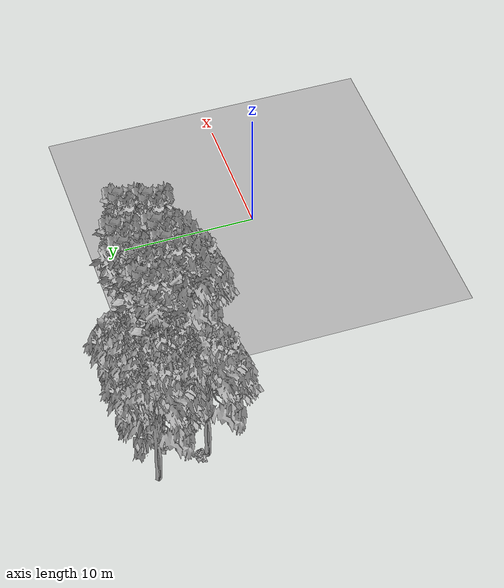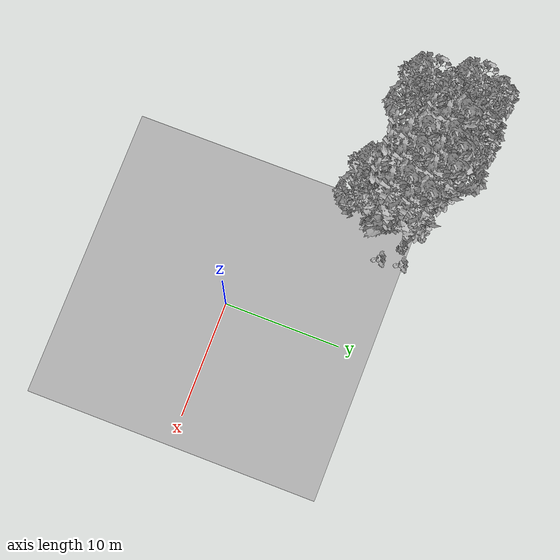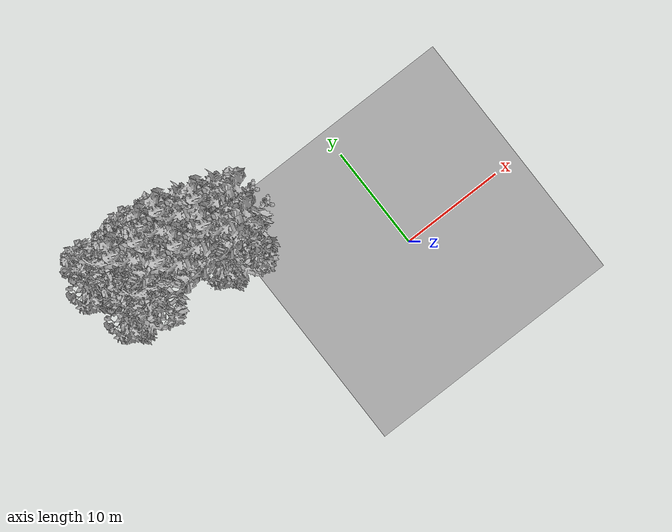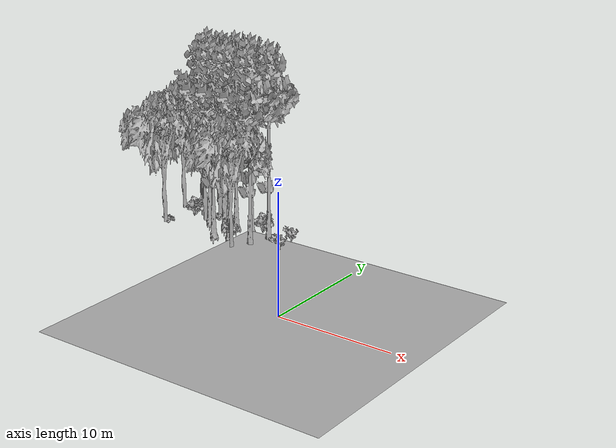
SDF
<sdf version="1.7">
 <world name="default">
  <model name="ground_plane">
   <static>1</static>
   <link name="link">
    <collision name="collision">
     <pose>-50 0 0 0 -0 0</pose>
     <geometry><plane><normal>0 0 1</normal><size>80 80</size></plane></geometry>
     <surface><contact><ode><min_depth>0.01</min_depth><max_vel>0</max_vel></ode></contact></surface>
    </collision>
    <visual name="grass">
     <cast_shadows>0</cast_shadows>
     <geometry>
      <mesh>
       <scale>0.46714285714285714 0.46714285714285714 0.1</scale>
       <uri>file://grass_plane/meshes/grass_plane.dae</uri>
      </mesh>
     </geometry>
    </visual>
   </link>
  </model>
  <model name="Tree 37">
   <static>1</static>
   <pose>-21.049315934115256 13.598727889173652 0 1.57079 -0 0</pose>
   <link name="link">
    <collision name="collision">
     <geometry><mesh><scale>3.5 5 3.5</scale><uri>model://tree_2/meshes/tree_2.obj</uri></mesh></geometry>
    </collision>
    <visual name="visual">
     <geometry><mesh><scale>3.5 5 3.5</scale><uri>model://tree_2/meshes/tree_2.obj</uri></mesh></geometry>
    </visual>
   </link>
  </model>
  <model name="Tree 114">
   <static>1</static>
   <pose>-14.282619381584038 12.86404115438799 0 1.57079 -0 0</pose>
   <link name="link">
    <collision name="collision">
     <geometry><mesh><scale>3.5 5 3.5</scale><uri>model://tree_9/meshes/tree_9.obj</uri></mesh></geometry>
    </collision>
    <visual name="visual">
     <geometry><mesh><scale>3.5 5 3.5</scale><uri>model://tree_9/meshes/tree_9.obj</uri></mesh></geometry>
    </visual>
   </link>
  </model>
  <model name="Tree 126">
   <static>1</static>
   <pose>-12.622005394462565 12.93216360612302 0 1.57079 -0 0</pose>
   <link name="link">
    <collision name="collision">
     <geometry><mesh><scale>3.5 5 3.5</scale><uri>model://tree_9/meshes/tree_9.obj</uri></mesh></geometry>
    </collision>
    <visual name="visual">
     <geometry><mesh><scale>3.5 5 3.5</scale><uri>model://tree_9/meshes/tree_9.obj</uri></mesh></geometry>
    </visual>
   </link>
  </model>
  <model name="Tree 143">
   <static>1</static>
   <pose>-18.40274703832983 13.103745881855971 0 1.57079 -0 0</pose>
   <link name="link">
    <collision name="collision">
     <geometry><mesh><scale>3.5 5 3.5</scale><uri>model://tree_2/meshes/tree_2.obj</uri></mesh></geometry>
    </collision>
    <visual name="visual">
     <geometry><mesh><scale>3.5 5 3.5</scale><uri>model://tree_2/meshes/tree_2.obj</uri></mesh></geometry>
    </visual>
   </link>
  </model>
  <model name="Tree 153">
   <static>1</static>
   <pose>-20.122389402768494 9.879454969190917 0 1.57079 -0 0</pose>
   <link name="link">
    <collision name="collision">
     <geometry><mesh><scale>3.5 5 3.5</scale><uri>model://tree_2/meshes/tree_2.obj</uri></mesh></geometry>
    </collision>
    <visual name="visual">
     <geometry><mesh><scale>3.5 5 3.5</scale><uri>model://tree_2/meshes/tree_2.obj</uri></mesh></geometry>
    </visual>
   </link>
  </model>
  <model name="Tree 256">
   <static>1</static>
   <pose>-13.068294841217796 10.319959708524642 0 1.57079 -0 0</pose>
   <link name="link">
    <collision name="collision">
     <geometry><mesh><scale>3.5 5 3.5</scale><uri>model://tree_9/meshes/tree_9.obj</uri></mesh></geometry>
    </collision>
    <visual name="visual">
     <geometry><mesh><scale>3.5 5 3.5</scale><uri>model://tree_9/meshes/tree_9.obj</uri></mesh></geometry>
    </visual>
   </link>
  </model>
  <model name="Tree 274">
   <static>1</static>
   <pose>-17.50146551106755 12.310568529882495 0 1.57079 -0 0</pose>
   <link name="link">
    <collision name="collision">
     <geometry><mesh><scale>3.5 5 3.5</scale><uri>model://tree_2/meshes/tree_2.obj</uri></mesh></geometry>
    </collision>
    <visual name="visual">
     <geometry><mesh><scale>3.5 5 3.5</scale><uri>model://tree_2/meshes/tree_2.obj</uri></mesh></geometry>
    </visual>
   </link>
  </model>
  <model name="Tree 300">
   <static>1</static>
   <pose>-17.00223904540789 12.46176353845685 0 1.57079 -0 0</pose>
   <link name="link">
    <collision name="collision">
     <geometry><mesh><scale>3.5 5 3.5</scale><uri>model://tree_9/meshes/tree_9.obj</uri></mesh></geometry>
    </collision>
    <visual name="visual">
     <geometry><mesh><scale>3.5 5 3.5</scale><uri>model://tree_9/meshes/tree_9.obj</uri></mesh></geometry>
    </visual>
   </link>
  </model>
  <model name="Tree 379">
   <static>1</static>
   <pose>-10.65107091705762 10.205101955153886 0 1.57079 -0 0</pose>
   <link name="link">
    <collision name="collision">
     <geometry><mesh><scale>3.5 5 3.5</scale><uri>model://tree_9/meshes/tree_9.obj</uri></mesh></geometry>
    </collision>
    <visual name="visual">
     <geometry><mesh><scale>3.5 5 3.5</scale><uri>model://tree_9/meshes/tree_9.obj</uri></mesh></geometry>
    </visual>
   </link>
  </model>
  <model name="Tree 395">
   <static>1</static>
   <pose>-15.061206467190086 12.169713312788147 0 1.57079 -0 0</pose>
   <link name="link">
    <collision name="collision">
     <geometry><mesh><scale>3.5 5 3.5</scale><uri>model://tree_9/meshes/tree_9.obj</uri></mesh></geometry>
    </collision>
    <visual name="visual">
     <geometry><mesh><scale>3.5 5 3.5</scale><uri>model://tree_9/meshes/tree_9.obj</uri></mesh></geometry>
    </visual>
   </link>
  </model>
  <model name="Tree 449">
   <static>1</static>
   <pose>-16.808506018421422 13.57249762337122 0 1.57079 -0 0</pose>
   <link name="link">
    <collision name="collision">
     <geometry><mesh><scale>3.5 5 3.5</scale><uri>model://tree_2/meshes/tree_2.obj</uri></mesh></geometry>
    </collision>
    <visual name="visual">
     <geometry><mesh><scale>3.5 5 3.5</scale><uri>model://tree_2/meshes/tree_2.obj</uri></mesh></geometry>
    </visual>
   </link>
  </model>
  <model name="Tree 454">
   <static>1</static>
   <pose>-11.65079328132174 8.724066061893012 0 1.57079 -0 0</pose>
   <link name="link">
    <collision name="collision">
     <geometry><mesh><scale>3.5 5 3.5</scale><uri>model://tree_2/meshes/tree_2.obj</uri></mesh></geometry>
    </collision>
    <visual name="visual">
     <geometry><mesh><scale>3.5 5 3.5</scale><uri>model://tree_2/meshes/tree_2.obj</uri></mesh></geometry>
    </visual>
   </link>
  </model>
  <model name="Tree 540">
   <static>1</static>
   <pose>-10.039358643767976 12.023235219420101 0 1.57079 -0 0</pose>
   <link name="link">
    <collision name="collision">
     <geometry><mesh><scale>3.5 5 3.5</scale><uri>model://tree_9/meshes/tree_9.obj</uri></mesh></geometry>
    </collision>
    <visual name="visual">
     <geometry><mesh><scale>3.5 5 3.5</scale><uri>model://tree_9/meshes/tree_9.obj</uri></mesh></geometry>
    </visual>
   </link>
  </model>
  <model name="Tree 562">
   <static>1</static>
   <pose>-14.681639145023176 10.187322683926112 0 1.57079 -0 0</pose>
   <link name="link">
    <collision name="collision">
     <geometry><mesh><scale>3.5 5 3.5</scale><uri>model://tree_9/meshes/tree_9.obj</uri></mesh></geometry>
    </collision>
    <visual name="visual">
     <geometry><mesh><scale>3.5 5 3.5</scale><uri>model://tree_9/meshes/tree_9.obj</uri></mesh></geometry>
    </visual>
   </link>
  </model>
  <model name="Bush 107">
   <static>1</static>
   <pose>-16.766497102108602 13.50797805499218 0 1.57079 -0 0</pose>
   <link name="link">
    <collision name="collision">
     <geometry><mesh><scale>2 2 2</scale><uri>model://bush_2/meshes/bush_2.obj</uri></mesh></geometry>
     <surface><contact><collide_without_contact>false</collide_without_contact></contact></surface>
    </collision>
    <visual name="visual">
     <geometry><mesh><scale>2 2 2</scale><uri>model://bush_2/meshes/bush_2.obj</uri></mesh></geometry>
    </visual>
   </link>
  </model>
  <model name="Bush 151">
   <static>1</static>
   <pose>-18.794732743742927 12.416278583311794 0 1.57079 -0 0</pose>
   <link name="link">
    <collision name="collision">
     <geometry><mesh><scale>2 2 2</scale><uri>model://bush_1/meshes/bush_1.obj</uri></mesh></geometry>
     <surface><contact><collide_without_contact>false</collide_without_contact></contact></surface>
    </collision>
    <visual name="visual">
     <geometry><mesh><scale>2 2 2</scale><uri>model://bush_1/meshes/bush_1.obj</uri></mesh></geometry>
    </visual>
   </link>
  </model>
  <model name="Bush 178">
   <static>1</static>
   <pose>-8.04448603885908 12.58410078364357 0 1.57079 -0 0</pose>
   <link name="link">
    <collision name="collision">
     <geometry><mesh><scale>2 2 2</scale><uri>model://bush_0/meshes/bush_0.obj</uri></mesh></geometry>
     <surface><contact><collide_without_contact>false</collide_without_contact></contact></surface>
    </collision>
    <visual name="visual">
     <geometry><mesh><scale>2 2 2</scale><uri>model://bush_0/meshes/bush_0.obj</uri></mesh></geometry>
    </visual>
   </link>
  </model>
  <model name="Bush 195">
   <static>1</static>
   <pose>-9.6895414283428 12.055095492287286 0 1.57079 -0 0</pose>
   <link name="link">
    <collision name="collision">
     <geometry><mesh><scale>2 2 2</scale><uri>model://bush_2/meshes/bush_2.obj</uri></mesh></geometry>
     <surface><contact><collide_without_contact>false</collide_without_contact></contact></surface>
    </collision>
    <visual name="visual">
     <geometry><mesh><scale>2 2 2</scale><uri>model://bush_2/meshes/bush_2.obj</uri></mesh></geometry>
    </visual>
   </link>
  </model>
  <model name="Bush 237">
   <static>1</static>
   <pose>-7.836399611819406 10.697098458152887 0 1.57079 -0 0</pose>
   <link name="link">
    <collision name="collision">
     <geometry><mesh><scale>2 2 2</scale><uri>model://bush_0/meshes/bush_0.obj</uri></mesh></geometry>
     <surface><contact><collide_without_contact>false</collide_without_contact></contact></surface>
    </collision>
    <visual name="visual">
     <geometry><mesh><scale>2 2 2</scale><uri>model://bush_0/meshes/bush_0.obj</uri></mesh></geometry>
    </visual>
   </link>
  </model>
  <model name="Bush 340">
   <static>1</static>
   <pose>-11.337013219640934 12.84373770517692 0 1.57079 -0 0</pose>
   <link name="link">
    <collision name="collision">
     <geometry><mesh><scale>2 2 2</scale><uri>model://bush_1/meshes/bush_1.obj</uri></mesh></geometry>
     <surface><contact><collide_without_contact>false</collide_without_contact></contact></surface>
    </collision>
    <visual name="visual">
     <geometry><mesh><scale>2 2 2</scale><uri>model://bush_1/meshes/bush_1.obj</uri></mesh></geometry>
    </visual>
   </link>
  </model>
  <model name="Bush 386">
   <static>1</static>
   <pose>-14.147815041132557 11.511729511842212 0 1.57079 -0 0</pose>
   <link name="link">
    <collision name="collision">
     <geometry><mesh><scale>2 2 2</scale><uri>model://bush_4/meshes/bush_4.obj</uri></mesh></geometry>
     <surface><contact><collide_without_contact>false</collide_without_contact></contact></surface>
    </collision>
    <visual name="visual">
     <geometry><mesh><scale>2 2 2</scale><uri>model://bush_4/meshes/bush_4.obj</uri></mesh></geometry>
    </visual>
   </link>
  </model>
  <model name="Bush 581">
   <static>1</static>
   <pose>-20.07766024962419 10.293239898096154 0 1.57079 -0 0</pose>
   <link name="link">
    <collision name="collision">
     <geometry><mesh><scale>2 2 2</scale><uri>model://bush_2/meshes/bush_2.obj</uri></mesh></geometry>
     <surface><contact><collide_without_contact>false</collide_without_contact></contact></surface>
    </collision>
    <visual name="visual">
     <geometry><mesh><scale>2 2 2</scale><uri>model://bush_2/meshes/bush_2.obj</uri></mesh></geometry>
    </visual>
   </link>
  </model>
  <model name="Bush 602">
   <static>1</static>
   <pose>-12.707648684544491 10.22915163950153 0 1.57079 -0 0</pose>
   <link name="link">
    <collision name="collision">
     <geometry><mesh><scale>2 2 2</scale><uri>model://bush_0/meshes/bush_0.obj</uri></mesh></geometry>
     <surface><contact><collide_without_contact>false</collide_without_contact></contact></surface>
    </collision>
    <visual name="visual">
     <geometry><mesh><scale>2 2 2</scale><uri>model://bush_0/meshes/bush_0.obj</uri></mesh></geometry>
    </visual>
   </link>
  </model>
 </world>
</sdf>
